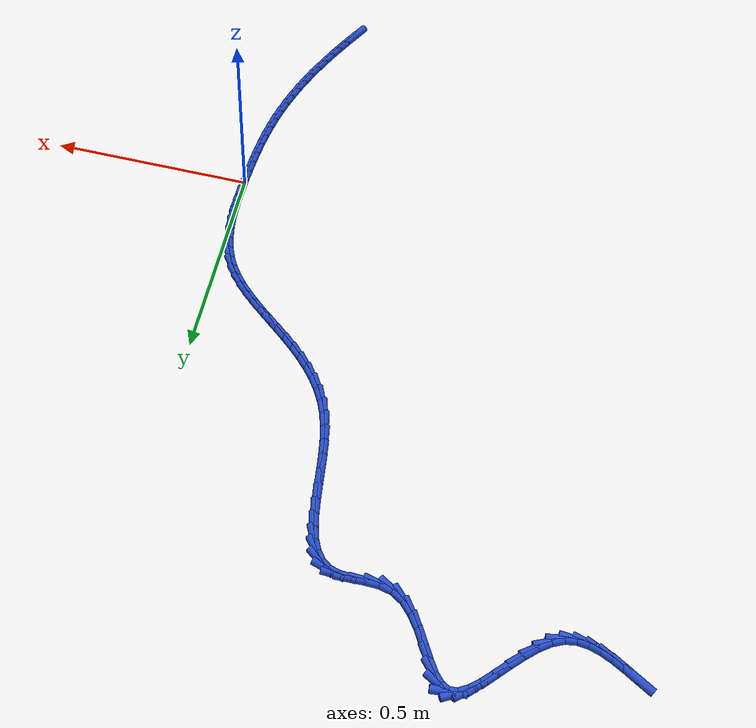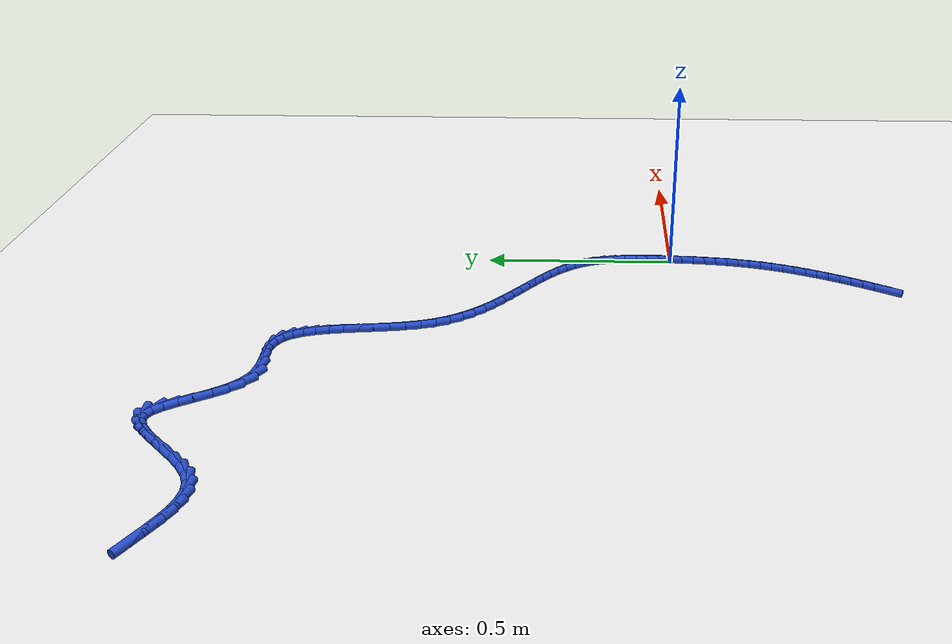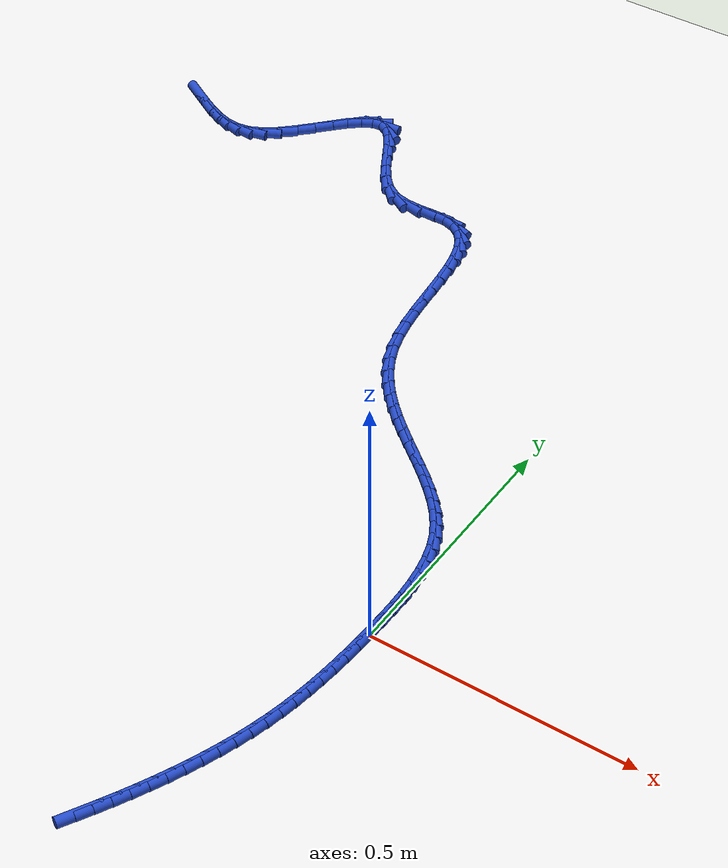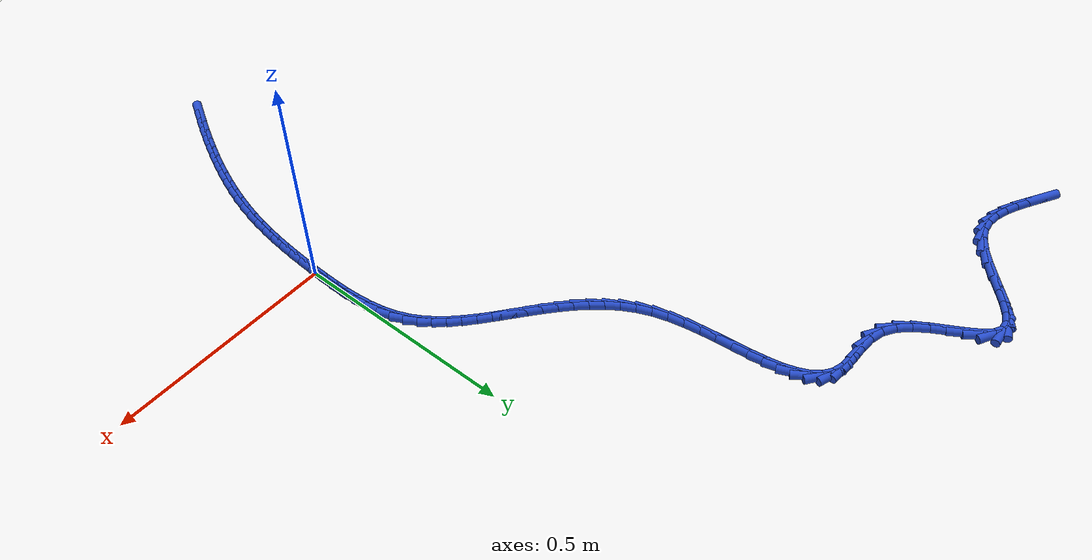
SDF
<sdf version="1.6">
 <world name="default">
  <model name="ground_plane">
   <static>1</static>
   <link name="link">
    <collision name="collision">
     <geometry><plane><normal>0 0 1</normal><size>100 100</size></plane></geometry>
     <surface><friction><ode><mu>100</mu><mu2>50</mu2></ode></friction></surface>
    </collision>
    <visual name="visual">
     <cast_shadows>0</cast_shadows>
     <geometry><plane><normal>0 0 1</normal><size>100 100</size></plane></geometry>
     <material>
      <script><uri>file://media/materials/scripts/gazebo.material</uri><name>Gazebo/WhiteGlow</name></script>
     </material>
    </visual>
   </link>
  </model>
  <model name="line">
   <link name="link_0">
    <pose>1.6263032587282567e-19 -2.7755575615628914e-17 0.01 0 1.57 1.5383353069634973</pose>
    <collision name="collision">
     <geometry><cylinder><radius>0.01</radius><length>0.08</length></cylinder></geometry>
    </collision>
    <visual name="visual">
     <material>
      <script><name>Gazebo/Blue</name><uri>file://media/materials/scripts/gazebo.material</uri></script>
     </material>
     <geometry><cylinder><radius>0.01</radius><length>0.08</length></cylinder></geometry>
    </visual>
   </link>
   <link name="link_1">
    <pose>0.0010352555482330502 0.03188106552595872 0.01 0 1.57 1.560093773469132</pose>
    <collision name="collision">
     <geometry><cylinder><radius>0.01</radius><length>0.08</length></cylinder></geometry>
    </collision>
    <visual name="visual">
     <material>
      <script><name>Gazebo/Blue</name><uri>file://media/materials/scripts/gazebo.material</uri></script>
     </material>
     <geometry><cylinder><radius>0.01</radius><length>0.08</length></cylinder></geometry>
    </visual>
   </link>
   <link name="link_2">
    <pose>0.001378065888462798 0.06391054864702697 0.01 0 1.57 -1.5489534965763683</pose>
    <collision name="collision">
     <geometry><cylinder><radius>0.01</radius><length>0.08</length></cylinder></geometry>
    </collision>
    <visual name="visual">
     <material>
      <script><name>Gazebo/Blue</name><uri>file://media/materials/scripts/gazebo.material</uri></script>
     </material>
     <geometry><cylinder><radius>0.01</radius><length>0.08</length></cylinder></geometry>
    </visual>
   </link>
   <link name="link_3">
    <pose>0.0006816672699082812 0.09578773009873769 0.01 0 1.57 -1.504626500046836</pose>
    <collision name="collision">
     <geometry><cylinder><radius>0.01</radius><length>0.08</length></cylinder></geometry>
    </collision>
    <visual name="visual">
     <material>
      <script><name>Gazebo/Blue</name><uri>file://media/materials/scripts/gazebo.material</uri></script>
     </material>
     <geometry><cylinder><radius>0.01</radius><length>0.08</length></cylinder></geometry>
    </visual>
   </link>
   <link name="link_4">
    <pose>-0.001400704058211463 0.12721189061662377 0.01 0 1.57 -1.4470415365663511</pose>
    <collision name="collision">
     <geometry><cylinder><radius>0.01</radius><length>0.08</length></cylinder></geometry>
    </collision>
    <visual name="visual">
     <material>
      <script><name>Gazebo/Blue</name><uri>file://media/materials/scripts/gazebo.material</uri></script>
     </material>
     <geometry><cylinder><radius>0.01</radius><length>0.08</length></cylinder></geometry>
    </visual>
   </link>
   <link name="link_5">
    <pose>-0.005215811846677402 0.1578823109362181 0.01 0 1.57 -1.3743289784296675</pose>
    <collision name="collision">
     <geometry><cylinder><radius>0.01</radius><length>0.08</length></cylinder></geometry>
    </collision>
    <visual name="visual">
     <material>
      <script><name>Gazebo/Blue</name><uri>file://media/materials/scripts/gazebo.material</uri></script>
     </material>
     <geometry><cylinder><radius>0.01</radius><length>0.08</length></cylinder></geometry>
    </visual>
   </link>
   <link name="link_6">
    <pose>-0.011110419846270496 0.18749827179305362 0.01 0 1.57 -1.2844558011551233</pose>
    <collision name="collision">
     <geometry><cylinder><radius>0.01</radius><length>0.08</length></cylinder></geometry>
    </collision>
    <visual name="visual">
     <material>
      <script><name>Gazebo/Blue</name><uri>file://media/materials/scripts/gazebo.material</uri></script>
     </material>
     <geometry><cylinder><radius>0.01</radius><length>0.08</length></cylinder></geometry>
    </visual>
   </link>
   <link name="link_7">
    <pose>-0.019431291807771717 0.2157590539226632 0.01 0 1.57 -1.175740636228173</pose>
    <collision name="collision">
     <geometry><cylinder><radius>0.01</radius><length>0.08</length></cylinder></geometry>
    </collision>
    <visual name="visual">
     <material>
      <script><name>Gazebo/Blue</name><uri>file://media/materials/scripts/gazebo.material</uri></script>
     </material>
     <geometry><cylinder><radius>0.01</radius><length>0.08</length></cylinder></geometry>
    </visual>
   </link>
   <link name="link_8">
    <pose>-0.030524989544669867 0.24236410001326464 0.01 0 1.57 -1.0553115258710937</pose>
    <collision name="collision">
     <geometry><cylinder><radius>0.01</radius><length>0.08</length></cylinder></geometry>
    </collision>
    <visual name="visual">
     <material>
      <script><name>Gazebo/Blue</name><uri>file://media/materials/scripts/gazebo.material</uri></script>
     </material>
     <geometry><cylinder><radius>0.01</radius><length>0.08</length></cylinder></geometry>
    </visual>
   </link>
   <link name="link_9">
    <pose>-0.044567867071848406 0.2671493585449896 0.01 0 1.57 -0.946920727944196</pose>
    <collision name="collision">
     <geometry><cylinder><radius>0.01</radius><length>0.08</length></cylinder></geometry>
    </collision>
    <visual name="visual">
     <material>
      <script><name>Gazebo/Blue</name><uri>file://media/materials/scripts/gazebo.material</uri></script>
     </material>
     <geometry><cylinder><radius>0.01</radius><length>0.08</length></cylinder></geometry>
    </visual>
   </link>
   <link name="link_10">
    <pose>-0.06125665207494896 0.2903354358834038 0.01 0 1.57 -0.8569819977501223</pose>
    <collision name="collision">
     <geometry><cylinder><radius>0.01</radius><length>0.08</length></cylinder></geometry>
    </collision>
    <visual name="visual">
     <material>
      <script><name>Gazebo/Blue</name><uri>file://media/materials/scripts/gazebo.material</uri></script>
     </material>
     <geometry><cylinder><radius>0.01</radius><length>0.08</length></cylinder></geometry>
    </visual>
   </link>
   <link name="link_11">
    <pose>-0.08020420010105639 0.31221020342415334 0.01 0 1.57 -0.786169993335585</pose>
    <collision name="collision">
     <geometry><cylinder><radius>0.01</radius><length>0.08</length></cylinder></geometry>
    </collision>
    <visual name="visual">
     <material>
      <script><name>Gazebo/Blue</name><uri>file://media/materials/scripts/gazebo.material</uri></script>
     </material>
     <geometry><cylinder><radius>0.01</radius><length>0.08</length></cylinder></geometry>
    </visual>
   </link>
   <link name="link_12">
    <pose>-0.10102336669725559 0.3330615325628844 0.01 0 1.57 -0.7338665187570729</pose>
    <collision name="collision">
     <geometry><cylinder><radius>0.01</radius><length>0.08</length></cylinder></geometry>
    </collision>
    <visual name="visual">
     <material>
      <script><name>Gazebo/Blue</name><uri>file://media/materials/scripts/gazebo.material</uri></script>
     </material>
     <geometry><cylinder><radius>0.01</radius><length>0.08</length></cylinder></geometry>
    </visual>
   </link>
   <link name="link_13">
    <pose>-0.12332700741063148 0.3531772946952434 0.01 0 1.57 -0.6989416583695793</pose>
    <collision name="collision">
     <geometry><cylinder><radius>0.01</radius><length>0.08</length></cylinder></geometry>
    </collision>
    <visual name="visual">
     <material>
      <script><name>Gazebo/Blue</name><uri>file://media/materials/scripts/gazebo.material</uri></script>
     </material>
     <geometry><cylinder><radius>0.01</radius><length>0.08</length></cylinder></geometry>
    </visual>
   </link>
   <link name="link_14">
    <pose>-0.14672797778826902 0.3728453612168767 0.01 0 1.57 -0.6802627960401084</pose>
    <collision name="collision">
     <geometry><cylinder><radius>0.01</radius><length>0.08</length></cylinder></geometry>
    </collision>
    <visual name="visual">
     <material>
      <script><name>Gazebo/Blue</name><uri>file://media/materials/scripts/gazebo.material</uri></script>
     </material>
     <geometry><cylinder><radius>0.01</radius><length>0.08</length></cylinder></geometry>
    </visual>
   </link>
   <link name="link_15">
    <pose>-0.170839133377253 0.3923536035234307 0.01 0 1.57 -0.6769563162297912</pose>
    <collision name="collision">
     <geometry><cylinder><radius>0.01</radius><length>0.08</length></cylinder></geometry>
    </collision>
    <visual name="visual">
     <material>
      <script><name>Gazebo/Blue</name><uri>file://media/materials/scripts/gazebo.material</uri></script>
     </material>
     <geometry><cylinder><radius>0.01</radius><length>0.08</length></cylinder></geometry>
    </visual>
   </link>
   <link name="link_16">
    <pose>-0.19527332972466852 0.41198989301055144 0.01 0 1.57 -0.688501725564443</pose>
    <collision name="collision">
     <geometry><cylinder><radius>0.01</radius><length>0.08</length></cylinder></geometry>
    </collision>
    <visual name="visual">
     <material>
      <script><name>Gazebo/Blue</name><uri>file://media/materials/scripts/gazebo.material</uri></script>
     </material>
     <geometry><cylinder><radius>0.01</radius><length>0.08</length></cylinder></geometry>
    </visual>
   </link>
   <link name="link_17">
    <pose>-0.2196434223776003 0.4320421010738855 0.01 0 1.57 -0.7147190556229543</pose>
    <collision name="collision">
     <geometry><cylinder><radius>0.01</radius><length>0.08</length></cylinder></geometry>
    </collision>
    <visual name="visual">
     <material>
      <script><name>Gazebo/Blue</name><uri>file://media/materials/scripts/gazebo.material</uri></script>
     </material>
     <geometry><cylinder><radius>0.01</radius><length>0.08</length></cylinder></geometry>
    </visual>
   </link>
   <link name="link_18">
    <pose>-0.24356226688313337 0.45279809910907903 0.01 0 1.57 -0.755675742183482</pose>
    <collision name="collision">
     <geometry><cylinder><radius>0.01</radius><length>0.08</length></cylinder></geometry>
    </collision>
    <visual name="visual">
     <material>
      <script><name>Gazebo/Blue</name><uri>file://media/materials/scripts/gazebo.material</uri></script>
     </material>
     <geometry><cylinder><radius>0.01</radius><length>0.08</length></cylinder></geometry>
    </visual>
   </link>
   <link name="link_19">
    <pose>-0.2666427187883525 0.47454575851177827 0.01 0 1.57 -0.811511261096778</pose>
    <collision name="collision">
     <geometry><cylinder><radius>0.01</radius><length>0.08</length></cylinder></geometry>
    </collision>
    <visual name="visual">
     <material>
      <script><name>Gazebo/Blue</name><uri>file://media/materials/scripts/gazebo.material</uri></script>
     </material>
     <geometry><cylinder><radius>0.01</radius><length>0.08</length></cylinder></geometry>
    </visual>
   </link>
   <link name="link_20">
    <pose>-0.28849763364034275 0.49757295067762963 0.01 0 1.57 -0.8821661393426828</pose>
    <collision name="collision">
     <geometry><cylinder><radius>0.01</radius><length>0.08</length></cylinder></geometry>
    </collision>
    <visual name="visual">
     <material>
      <script><name>Gazebo/Blue</name><uri>file://media/materials/scripts/gazebo.material</uri></script>
     </material>
     <geometry><cylinder><radius>0.01</radius><length>0.08</length></cylinder></geometry>
    </visual>
   </link>
   <link name="link_21">
    <pose>-0.3087398669861889 0.5221675470022795 0.01 0 1.57 -0.9670183894623179</pose>
    <collision name="collision">
     <geometry><cylinder><radius>0.01</radius><length>0.08</length></cylinder></geometry>
    </collision>
    <visual name="visual">
     <material>
      <script><name>Gazebo/Blue</name><uri>file://media/materials/scripts/gazebo.material</uri></script>
     </material>
     <geometry><cylinder><radius>0.01</radius><length>0.08</length></cylinder></geometry>
    </visual>
   </link>
   <link name="link_22">
    <pose>-0.32698227437297595 0.5486174188813739 0.01 0 1.57 -1.0644885234339185</pose>
    <collision name="collision">
     <geometry><cylinder><radius>0.01</radius><length>0.08</length></cylinder></geometry>
    </collision>
    <visual name="visual">
     <material>
      <script><name>Gazebo/Blue</name><uri>file://media/materials/scripts/gazebo.material</uri></script>
     </material>
     <geometry><cylinder><radius>0.01</radius><length>0.08</length></cylinder></geometry>
    </visual>
   </link>
   <link name="link_23">
    <pose>-0.3428377113477887 0.5772104377105595 0.01 0 1.57 -1.171765569708447</pose>
    <collision name="collision">
     <geometry><cylinder><radius>0.01</radius><length>0.08</length></cylinder></geometry>
    </collision>
    <visual name="visual">
     <material>
      <script><name>Gazebo/Blue</name><uri>file://media/materials/scripts/gazebo.material</uri></script>
     </material>
     <geometry><cylinder><radius>0.01</radius><length>0.08</length></cylinder></geometry>
    </visual>
   </link>
   <link name="link_24">
    <pose>-0.35591903345771225 0.6082344748854823 0.01 0 1.57 -1.2799683563777309</pose>
    <collision name="collision">
     <geometry><cylinder><radius>0.01</radius><length>0.08</length></cylinder></geometry>
    </collision>
    <visual name="visual">
     <material>
      <script><name>Gazebo/Blue</name><uri>file://media/materials/scripts/gazebo.material</uri></script>
     </material>
     <geometry><cylinder><radius>0.01</radius><length>0.08</length></cylinder></geometry>
    </visual>
   </link>
   <link name="link_25">
    <pose>-0.3659776025540326 0.6418398030833943 0.01 0 1.57 -1.3636214379125997</pose>
    <collision name="collision">
     <geometry><cylinder><radius>0.01</radius><length>0.08</length></cylinder></geometry>
    </collision>
    <visual name="visual">
     <material>
      <script><name>Gazebo/Blue</name><uri>file://media/materials/scripts/gazebo.material</uri></script>
     </material>
     <geometry><cylinder><radius>0.01</radius><length>0.08</length></cylinder></geometry>
    </visual>
   </link>
   <link name="link_26">
    <pose>-0.37346836378134174 0.6774777220358674 0.01 0 1.57 -1.420165587430014</pose>
    <collision name="collision">
     <geometry><cylinder><radius>0.01</radius><length>0.08</length></cylinder></geometry>
    </collision>
    <visual name="visual">
     <material>
      <script><name>Gazebo/Blue</name><uri>file://media/materials/scripts/gazebo.material</uri></script>
     </material>
     <geometry><cylinder><radius>0.01</radius><length>0.08</length></cylinder></geometry>
    </visual>
   </link>
   <link name="link_27">
    <pose>-0.37906912351903477 0.7143781305753185 0.01 0 1.57 -1.453964266465154</pose>
    <collision name="collision">
     <geometry><cylinder><radius>0.01</radius><length>0.08</length></cylinder></geometry>
    </collision>
    <visual name="visual">
     <material>
      <script><name>Gazebo/Blue</name><uri>file://media/materials/scripts/gazebo.material</uri></script>
     </material>
     <geometry><cylinder><radius>0.01</radius><length>0.08</length></cylinder></geometry>
    </visual>
   </link>
   <link name="link_28">
    <pose>-0.38345777690040506 0.7517708393618422 0.01 0 1.57 -1.4673154478947013</pose>
    <collision name="collision">
     <geometry><cylinder><radius>0.01</radius><length>0.08</length></cylinder></geometry>
    </collision>
    <visual name="visual">
     <material>
      <script><name>Gazebo/Blue</name><uri>file://media/materials/scripts/gazebo.material</uri></script>
     </material>
     <geometry><cylinder><radius>0.01</radius><length>0.08</length></cylinder></geometry>
    </visual>
   </link>
   <link name="link_29">
    <pose>-0.3873122190587464 0.7888856590555314 0.01 0 1.57 -1.4603935394240113</pose>
    <collision name="collision">
     <geometry><cylinder><radius>0.01</radius><length>0.08</length></cylinder></geometry>
    </collision>
    <visual name="visual">
     <material>
      <script><name>Gazebo/Blue</name><uri>file://media/materials/scripts/gazebo.material</uri></script>
     </material>
     <geometry><cylinder><radius>0.01</radius><length>0.08</length></cylinder></geometry>
    </visual>
   </link>
   <link name="link_30">
    <pose>-0.39131034512735235 0.8249524003164805 0.01 0 1.57 -1.4309868540042958</pose>
    <collision name="collision">
     <geometry><cylinder><radius>0.01</radius><length>0.08</length></cylinder></geometry>
    </collision>
    <visual name="visual">
     <material>
      <script><name>Gazebo/Blue</name><uri>file://media/materials/scripts/gazebo.material</uri></script>
     </material>
     <geometry><cylinder><radius>0.01</radius><length>0.08</length></cylinder></geometry>
    </visual>
   </link>
   <link name="link_31">
    <pose>-0.3961300502395162 0.8592008738047826 0.01 0 1.57 -1.3737902713503496</pose>
    <collision name="collision">
     <geometry><cylinder><radius>0.01</radius><length>0.08</length></cylinder></geometry>
    </collision>
    <visual name="visual">
     <material>
      <script><name>Gazebo/Blue</name><uri>file://media/materials/scripts/gazebo.material</uri></script>
     </material>
     <geometry><cylinder><radius>0.01</radius><length>0.08</length></cylinder></geometry>
    </visual>
   </link>
   <link name="link_32">
    <pose>-0.4024492295285319 0.8908608901805314 0.01 0 1.57 -1.2791405840011714</pose>
    <collision name="collision">
     <geometry><cylinder><radius>0.01</radius><length>0.08</length></cylinder></geometry>
    </collision>
    <visual name="visual">
     <material>
      <script><name>Gazebo/Blue</name><uri>file://media/materials/scripts/gazebo.material</uri></script>
     </material>
     <geometry><cylinder><radius>0.01</radius><length>0.08</length></cylinder></geometry>
    </visual>
   </link>
   <link name="link_33">
    <pose>-0.41094577812769273 0.9191622601038207 0.01 0 1.57 -1.1317498638830485</pose>
    <collision name="collision">
     <geometry><cylinder><radius>0.01</radius><length>0.08</length></cylinder></geometry>
    </collision>
    <visual name="visual">
     <material>
      <script><name>Gazebo/Blue</name><uri>file://media/materials/scripts/gazebo.material</uri></script>
     </material>
     <geometry><cylinder><radius>0.01</radius><length>0.08</length></cylinder></geometry>
    </visual>
   </link>
   <link name="link_34">
    <pose>-0.42229759117029253 0.9433347942347444 0.01 0 1.57 -0.9131739533886902</pose>
    <collision name="collision">
     <geometry><cylinder><radius>0.01</radius><length>0.08</length></cylinder></geometry>
    </collision>
    <visual name="visual">
     <material>
      <script><name>Gazebo/Blue</name><uri>file://media/materials/scripts/gazebo.material</uri></script>
     </material>
     <geometry><cylinder><radius>0.01</radius><length>0.08</length></cylinder></geometry>
    </visual>
   </link>
   <link name="link_35">
    <pose>-0.4371825637896247 0.9626083032333959 0.01 0 1.57 -0.6190096114699019</pose>
    <collision name="collision">
     <geometry><cylinder><radius>0.01</radius><length>0.08</length></cylinder></geometry>
    </collision>
    <visual name="visual">
     <material>
      <script><name>Gazebo/Blue</name><uri>file://media/materials/scripts/gazebo.material</uri></script>
     </material>
     <geometry><cylinder><radius>0.01</radius><length>0.08</length></cylinder></geometry>
    </visual>
   </link>
   <link name="link_36">
    <pose>-0.45627859111898295 0.9762125977598689 0.01 0 1.57 -0.2904046029503048</pose>
    <collision name="collision">
     <geometry><cylinder><radius>0.01</radius><length>0.08</length></cylinder></geometry>
    </collision>
    <visual name="visual">
     <material>
      <script><name>Gazebo/Blue</name><uri>file://media/materials/scripts/gazebo.material</uri></script>
     </material>
     <geometry><cylinder><radius>0.01</radius><length>0.08</length></cylinder></geometry>
    </visual>
   </link>
   <link name="link_37">
    <pose>-0.4802619861468897 0.983380118651616 0.01 0 1.57 -0.041829468330891004</pose>
    <collision name="collision">
     <geometry><cylinder><radius>0.01</radius><length>0.08</length></cylinder></geometry>
    </collision>
    <visual name="visual">
     <material>
      <script><name>Gazebo/Blue</name><uri>file://media/materials/scripts/gazebo.material</uri></script>
     </material>
     <geometry><cylinder><radius>0.01</radius><length>0.08</length></cylinder></geometry>
    </visual>
   </link>
   <link name="link_38">
    <pose>-0.5090618361465976 0.9845855041699224 0.01 0 1.57 0.03351676105892445</pose>
    <collision name="collision">
     <geometry><cylinder><radius>0.01</radius><length>0.08</length></cylinder></geometry>
    </collision>
    <visual name="visual">
     <material>
      <script><name>Gazebo/Blue</name><uri>file://media/materials/scripts/gazebo.material</uri></script>
     </material>
     <geometry><cylinder><radius>0.01</radius><length>0.08</length></cylinder></geometry>
    </visual>
   </link>
   <link name="link_39">
    <pose>-0.5406688712487268 0.9835257418606829 0.01 0 1.57 -0.027654187509504276</pose>
    <collision name="collision">
     <geometry><cylinder><radius>0.01</radius><length>0.08</length></cylinder></geometry>
    </collision>
    <visual name="visual">
     <material>
      <script><name>Gazebo/Blue</name><uri>file://media/materials/scripts/gazebo.material</uri></script>
     </material>
     <geometry><cylinder><radius>0.01</radius><length>0.08</length></cylinder></geometry>
    </visual>
   </link>
   <link name="link_40">
    <pose>-0.5727636081067112 0.9844135220545379 0.01 0 1.57 -0.22881374933406928</pose>
    <collision name="collision">
     <geometry><cylinder><radius>0.01</radius><length>0.08</length></cylinder></geometry>
    </collision>
    <visual name="visual">
     <material>
      <script><name>Gazebo/Blue</name><uri>file://media/materials/scripts/gazebo.material</uri></script>
     </material>
     <geometry><cylinder><radius>0.01</radius><length>0.08</length></cylinder></geometry>
    </visual>
   </link>
   <link name="link_41">
    <pose>-0.6030265633739852 0.9914615350821276 0.01 0 1.57 -0.5541904445779866</pose>
    <collision name="collision">
     <geometry><cylinder><radius>0.01</radius><length>0.08</length></cylinder></geometry>
    </collision>
    <visual name="visual">
     <material>
      <script><name>Gazebo/Blue</name><uri>file://media/materials/scripts/gazebo.material</uri></script>
     </material>
     <geometry><cylinder><radius>0.01</radius><length>0.08</length></cylinder></geometry>
    </visual>
   </link>
   <link name="link_42">
    <pose>-0.6295690195899953 1.0078882822779218 0.01 0 1.57 -0.8125869228990091</pose>
    <collision name="collision">
     <geometry><cylinder><radius>0.01</radius><length>0.08</length></cylinder></geometry>
    </collision>
    <visual name="visual">
     <material>
      <script><name>Gazebo/Blue</name><uri>file://media/materials/scripts/gazebo.material</uri></script>
     </material>
     <geometry><cylinder><radius>0.01</radius><length>0.08</length></cylinder></geometry>
    </visual>
   </link>
   <link name="link_43">
    <pose>-0.652559514438857 1.0321642092608283 0.01 0 1.57 -0.9648073413728792</pose>
    <collision name="collision">
     <geometry><cylinder><radius>0.01</radius><length>0.08</length></cylinder></geometry>
    </collision>
    <visual name="visual">
     <material>
      <script><name>Gazebo/Blue</name><uri>file://media/materials/scripts/gazebo.material</uri></script>
     </material>
     <geometry><cylinder><radius>0.01</radius><length>0.08</length></cylinder></geometry>
    </visual>
   </link>
   <link name="link_44">
    <pose>-0.6727800432870837 1.061343927905111 0.01 0 1.57 -1.0410724566464922</pose>
    <collision name="collision">
     <geometry><cylinder><radius>0.01</radius><length>0.08</length></cylinder></geometry>
    </collision>
    <visual name="visual">
     <material>
      <script><name>Gazebo/Blue</name><uri>file://media/materials/scripts/gazebo.material</uri></script>
     </material>
     <geometry><cylinder><radius>0.01</radius><length>0.08</length></cylinder></geometry>
    </visual>
   </link>
   <link name="link_45">
    <pose>-0.691012707511905 1.092481805416899 0.01 0 1.57 -1.056712876413495</pose>
    <collision name="collision">
     <geometry><cylinder><radius>0.01</radius><length>0.08</length></cylinder></geometry>
    </collision>
    <visual name="visual">
     <material>
      <script><name>Gazebo/Blue</name><uri>file://media/materials/scripts/gazebo.material</uri></script>
     </material>
     <geometry><cylinder><radius>0.01</radius><length>0.08</length></cylinder></geometry>
    </visual>
   </link>
   <link name="link_46">
    <pose>-0.7080396084905498 1.1226322090023217 0.01 0 1.57 -1.0062554882138028</pose>
    <collision name="collision">
     <geometry><cylinder><radius>0.01</radius><length>0.08</length></cylinder></geometry>
    </collision>
    <visual name="visual">
     <material>
      <script><name>Gazebo/Blue</name><uri>file://media/materials/scripts/gazebo.material</uri></script>
     </material>
     <geometry><cylinder><radius>0.01</radius><length>0.08</length></cylinder></geometry>
    </visual>
   </link>
   <link name="link_47">
    <pose>-0.7246428476002467 1.1488495058675068 0.01 0 1.57 -0.8507831532123473</pose>
    <collision name="collision">
     <geometry><cylinder><radius>0.01</radius><length>0.08</length></cylinder></geometry>
    </collision>
    <visual name="visual">
     <material>
      <script><name>Gazebo/Blue</name><uri>file://media/materials/scripts/gazebo.material</uri></script>
     </material>
     <geometry><cylinder><radius>0.01</radius><length>0.08</length></cylinder></geometry>
    </visual>
   </link>
   <link name="link_48">
    <pose>-0.7416045262182246 1.1681880632185835 0.01 0 1.57 -0.4839188857858722</pose>
    <collision name="collision">
     <geometry><cylinder><radius>0.01</radius><length>0.08</length></cylinder></geometry>
    </collision>
    <visual name="visual">
     <material>
      <script><name>Gazebo/Blue</name><uri>file://media/materials/scripts/gazebo.material</uri></script>
     </material>
     <geometry><cylinder><radius>0.01</radius><length>0.08</length></cylinder></geometry>
    </visual>
   </link>
   <link name="link_49">
    <pose>-0.7597066811475539 1.1777025938008612 0.01 0 1.57 0.10765609307942972</pose>
    <collision name="collision">
     <geometry><cylinder><radius>0.01</radius><length>0.08</length></cylinder></geometry>
    </collision>
    <visual name="visual">
     <material>
      <script><name>Gazebo/Blue</name><uri>file://media/materials/scripts/gazebo.material</uri></script>
     </material>
     <geometry><cylinder><radius>0.01</radius><length>0.08</length></cylinder></geometry>
    </visual>
   </link>
   <link name="link_50">
    <pose>-0.7795233299417831 1.175560930573153 0.01 0 1.57 0.5119483099922227</pose>
    <collision name="collision">
     <geometry><cylinder><radius>0.01</radius><length>0.08</length></cylinder></geometry>
    </collision>
    <visual name="visual">
     <material>
      <script><name>Gazebo/Blue</name><uri>file://media/materials/scripts/gazebo.material</uri></script>
     </material>
     <geometry><cylinder><radius>0.01</radius><length>0.08</length></cylinder></geometry>
    </visual>
   </link>
   <link name="link_51">
    <pose>-0.8009584918633995 1.1635160970115264 0.01 0 1.57 0.7063978190612228</pose>
    <collision name="collision">
     <geometry><cylinder><radius>0.01</radius><length>0.08</length></cylinder></geometry>
    </collision>
    <visual name="visual">
     <material>
      <script><name>Gazebo/Blue</name><uri>file://media/materials/scripts/gazebo.material</uri></script>
     </material>
     <geometry><cylinder><radius>0.01</radius><length>0.08</length></cylinder></geometry>
    </visual>
   </link>
   <link name="link_52">
    <pose>-0.8237815558473549 1.1440415294349666 0.01 0 1.57 0.7947038013231421</pose>
    <collision name="collision">
     <geometry><cylinder><radius>0.01</radius><length>0.08</length></cylinder></geometry>
    </collision>
    <visual name="visual">
     <material>
      <script><name>Gazebo/Blue</name><uri>file://media/materials/scripts/gazebo.material</uri></script>
     </material>
     <geometry><cylinder><radius>0.01</radius><length>0.08</length></cylinder></geometry>
    </visual>
   </link>
   <link name="link_53">
    <pose>-0.8477619108286011 1.1196106641624588 0.01 0 1.57 0.8241025272228049</pose>
    <collision name="collision">
     <geometry><cylinder><radius>0.01</radius><length>0.08</length></cylinder></geometry>
    </collision>
    <visual name="visual">
     <material>
      <script><name>Gazebo/Blue</name><uri>file://media/materials/scripts/gazebo.material</uri></script>
     </material>
     <geometry><cylinder><radius>0.01</radius><length>0.08</length></cylinder></geometry>
    </visual>
   </link>
   <link name="link_54">
    <pose>-0.8726689457420906 1.0926969375129894 0.01 0 1.57 0.8105240764414253</pose>
    <collision name="collision">
     <geometry><cylinder><radius>0.01</radius><length>0.08</length></cylinder></geometry>
    </collision>
    <visual name="visual">
     <material>
      <script><name>Gazebo/Blue</name><uri>file://media/materials/scripts/gazebo.material</uri></script>
     </material>
     <geometry><cylinder><radius>0.01</radius><length>0.08</length></cylinder></geometry>
    </visual>
   </link>
   <link name="link_55">
    <pose>-0.8982720495227755 1.0657737858055436 0.01 0 1.57 0.7535566761562176</pose>
    <collision name="collision">
     <geometry><cylinder><radius>0.01</radius><length>0.08</length></cylinder></geometry>
    </collision>
    <visual name="visual">
     <material>
      <script><name>Gazebo/Blue</name><uri>file://media/materials/scripts/gazebo.material</uri></script>
     </material>
     <geometry><cylinder><radius>0.01</radius><length>0.08</length></cylinder></geometry>
    </visual>
   </link>
   <link name="link_56">
    <pose>-0.9243406111056073 1.0413146453591071 0.01 0 1.57 0.6384733091120199</pose>
    <collision name="collision">
     <geometry><cylinder><radius>0.01</radius><length>0.08</length></cylinder></geometry>
    </collision>
    <visual name="visual">
     <material>
      <script><name>Gazebo/Blue</name><uri>file://media/materials/scripts/gazebo.material</uri></script>
     </material>
     <geometry><cylinder><radius>0.01</radius><length>0.08</length></cylinder></geometry>
    </visual>
   </link>
   <link name="link_57">
    <pose>-0.950644019425538 1.0217929524926654 0.01 0 1.57 0.4342787155163912</pose>
    <collision name="collision">
     <geometry><cylinder><radius>0.01</radius><length>0.08</length></cylinder></geometry>
    </collision>
    <visual name="visual">
     <material>
      <script><name>Gazebo/Blue</name><uri>file://media/materials/scripts/gazebo.material</uri></script>
     </material>
     <geometry><cylinder><radius>0.01</radius><length>0.08</length></cylinder></geometry>
    </visual>
   </link>
   <link name="link_58">
    <pose>-0.9769611053597728 1.0095868272610382 0.01 0 1.57 0.16494484447527724</pose>
    <collision name="collision">
     <geometry><cylinder><radius>0.01</radius><length>0.08</length></cylinder></geometry>
    </collision>
    <visual name="visual">
     <material>
      <script><name>Gazebo/Blue</name><uri>file://media/materials/scripts/gazebo.material</uri></script>
     </material>
     <geometry><cylinder><radius>0.01</radius><length>0.08</length></cylinder></geometry>
    </visual>
   </link>
   <link name="link_59">
    <pose>-1.0032553889905436 1.0052099549888966 0.01 0 1.57 -0.08566554288172233</pose>
    <collision name="collision">
     <geometry><cylinder><radius>0.01</radius><length>0.08</length></cylinder></geometry>
    </collision>
    <visual name="visual">
     <material>
      <script><name>Gazebo/Blue</name><uri>file://media/materials/scripts/gazebo.material</uri></script>
     </material>
     <geometry><cylinder><radius>0.01</radius><length>0.08</length></cylinder></geometry>
    </visual>
   </link>
   <link name="link_60">
    <pose>-1.0296586587412213 1.007477354643281 0.01 0 1.57 -0.2800429669759666</pose>
    <collision name="collision">
     <geometry><cylinder><radius>0.01</radius><length>0.08</length></cylinder></geometry>
    </collision>
    <visual name="visual">
     <material>
      <script><name>Gazebo/Blue</name><uri>file://media/materials/scripts/gazebo.material</uri></script>
     </material>
     <geometry><cylinder><radius>0.01</radius><length>0.08</length></cylinder></geometry>
    </visual>
   </link>
   <link name="link_61">
    <pose>-1.0563088518758008 1.015141972738158 0.01 0 1.57 -0.41200512017393365</pose>
    <collision name="collision">
     <geometry><cylinder><radius>0.01</radius><length>0.08</length></cylinder></geometry>
    </collision>
    <visual name="visual">
     <material>
      <script><name>Gazebo/Blue</name><uri>file://media/materials/scripts/gazebo.material</uri></script>
     </material>
     <geometry><cylinder><radius>0.01</radius><length>0.08</length></cylinder></geometry>
    </visual>
   </link>
   <link name="link_62">
    <pose>-1.0833439056582777 1.0269567557874957 0.01 0 1.57 -0.4905327318039381</pose>
    <collision name="collision">
     <geometry><cylinder><radius>0.01</radius><length>0.08</length></cylinder></geometry>
    </collision>
    <visual name="visual">
     <material>
      <script><name>Gazebo/Blue</name><uri>file://media/materials/scripts/gazebo.material</uri></script>
     </material>
     <geometry><cylinder><radius>0.01</radius><length>0.08</length></cylinder></geometry>
    </visual>
   </link>
   <link name="link_63">
    <pose>-1.1109017573526472 1.041674650305261 0.01 0 1.57 -0.5257739572577095</pose>
    <collision name="collision">
     <geometry><cylinder><radius>0.01</radius><length>0.08</length></cylinder></geometry>
    </collision>
    <visual name="visual">
     <material>
      <script><name>Gazebo/Blue</name><uri>file://media/materials/scripts/gazebo.material</uri></script>
     </material>
     <geometry><cylinder><radius>0.01</radius><length>0.08</length></cylinder></geometry>
    </visual>
   </link>
   <link name="link_64">
    <pose>-1.1391203442229048 1.0580486028054217 0.01 0 1.57 -0.5243695558374367</pose>
    <collision name="collision">
     <geometry><cylinder><radius>0.01</radius><length>0.08</length></cylinder></geometry>
    </collision>
    <visual name="visual">
     <material>
      <script><name>Gazebo/Blue</name><uri>file://media/materials/scripts/gazebo.material</uri></script>
     </material>
     <geometry><cylinder><radius>0.01</radius><length>0.08</length></cylinder></geometry>
    </visual>
   </link>
   <link name="link_241">
    <pose>-0.16120354918488142 -0.5515253583471565 0.01 0 1.57 1.0576519265628626</pose>
    <collision name="collision">
     <geometry><cylinder><radius>0.01</radius><length>0.08</length></cylinder></geometry>
    </collision>
    <visual name="visual">
     <material>
      <script><name>Gazebo/Blue</name><uri>file://media/materials/scripts/gazebo.material</uri></script>
     </material>
     <geometry><cylinder><radius>0.01</radius><length>0.08</length></cylinder></geometry>
    </visual>
   </link>
   <link name="link_242">
    <pose>-0.1462954205508334 -0.525068781083825 0.01 0 1.57 1.0748351992476393</pose>
    <collision name="collision">
     <geometry><cylinder><radius>0.01</radius><length>0.08</length></cylinder></geometry>
    </collision>
    <visual name="visual">
     <material>
      <script><name>Gazebo/Blue</name><uri>file://media/materials/scripts/gazebo.material</uri></script>
     </material>
     <geometry><cylinder><radius>0.01</radius><length>0.08</length></cylinder></geometry>
    </visual>
   </link>
   <link name="link_243">
    <pose>-0.13181292774480022 -0.4983023745952434 0.01 0 1.57 1.0934655069821055</pose>
    <collision name="collision">
     <geometry><cylinder><radius>0.01</radius><length>0.08</length></cylinder></geometry>
    </collision>
    <visual name="visual">
     <material>
      <script><name>Gazebo/Blue</name><uri>file://media/materials/scripts/gazebo.material</uri></script>
     </material>
     <geometry><cylinder><radius>0.01</radius><length>0.08</length></cylinder></geometry>
    </visual>
   </link>
   <link name="link_244">
    <pose>-0.1177885401557168 -0.47118759096135493 0.01 0 1.57 1.1135136493272648</pose>
    <collision name="collision">
     <geometry><cylinder><radius>0.01</radius><length>0.08</length></cylinder></geometry>
    </collision>
    <visual name="visual">
     <material>
      <script><name>Gazebo/Blue</name><uri>file://media/materials/scripts/gazebo.material</uri></script>
     </material>
     <geometry><cylinder><radius>0.01</radius><length>0.08</length></cylinder></geometry>
    </visual>
   </link>
   <link name="link_245">
    <pose>-0.10425846839309626 -0.4436912995412875 0.01 0 1.57 1.1352201692109185</pose>
    <collision name="collision">
     <geometry><cylinder><radius>0.01</radius><length>0.08</length></cylinder></geometry>
    </collision>
    <visual name="visual">
     <material>
      <script><name>Gazebo/Blue</name><uri>file://media/materials/scripts/gazebo.material</uri></script>
     </material>
     <geometry><cylinder><radius>0.01</radius><length>0.08</length></cylinder></geometry>
    </visual>
   </link>
   <link name="link_246">
    <pose>-0.0912900467972939 -0.4158254367881117 0.01 0 1.57 1.1588026458499683</pose>
    <collision name="collision">
     <geometry><cylinder><radius>0.01</radius><length>0.08</length></cylinder></geometry>
    </collision>
    <visual name="visual">
     <material>
      <script><name>Gazebo/Blue</name><uri>file://media/materials/scripts/gazebo.material</uri></script>
     </material>
     <geometry><cylinder><radius>0.01</radius><length>0.08</length></cylinder></geometry>
    </visual>
   </link>
   <link name="link_247">
    <pose>-0.07896604506524113 -0.3876242895173375 0.01 0 1.57 1.1843786257312923</pose>
    <collision name="collision">
     <geometry><cylinder><radius>0.01</radius><length>0.08</length></cylinder></geometry>
    </collision>
    <visual name="visual">
     <material>
      <script><name>Gazebo/Blue</name><uri>file://media/materials/scripts/gazebo.material</uri></script>
     </material>
     <geometry><cylinder><radius>0.01</radius><length>0.08</length></cylinder></geometry>
    </visual>
   </link>
   <link name="link_248">
    <pose>-0.06736934386051369 -0.35912230522393307 0.01 0 1.57 1.2120750318734292</pose>
    <collision name="collision">
     <geometry><cylinder><radius>0.01</radius><length>0.08</length></cylinder></geometry>
    </collision>
    <visual name="visual">
     <material>
      <script><name>Gazebo/Blue</name><uri>file://media/materials/scripts/gazebo.material</uri></script>
     </material>
     <geometry><cylinder><radius>0.01</radius><length>0.08</length></cylinder></geometry>
    </visual>
   </link>
   <link name="link_249">
    <pose>-0.05658282384668744 -0.3303539314028667 0.01 0 1.57 1.2420273335836065</pose>
    <collision name="collision">
     <geometry><cylinder><radius>0.01</radius><length>0.08</length></cylinder></geometry>
    </collision>
    <visual name="visual">
     <material>
      <script><name>Gazebo/Blue</name><uri>file://media/materials/scripts/gazebo.material</uri></script>
     </material>
     <geometry><cylinder><radius>0.01</radius><length>0.08</length></cylinder></geometry>
    </visual>
   </link>
   <link name="link_250">
    <pose>-0.0466893656873381 -0.30135361554910606 0.01 0 1.57 1.2743769965519067</pose>
    <collision name="collision">
     <geometry><cylinder><radius>0.01</radius><length>0.08</length></cylinder></geometry>
    </collision>
    <visual name="visual">
     <material>
      <script><name>Gazebo/Blue</name><uri>file://media/materials/scripts/gazebo.material</uri></script>
     </material>
     <geometry><cylinder><radius>0.01</radius><length>0.08</length></cylinder></geometry>
    </visual>
   </link>
   <link name="link_251">
    <pose>-0.03777185004604147 -0.27215580515761933 0.01 0 1.57 1.3092678796769217</pose>
    <collision name="collision">
     <geometry><cylinder><radius>0.01</radius><length>0.08</length></cylinder></geometry>
    </collision>
    <visual name="visual">
     <material>
      <script><name>Gazebo/Blue</name><uri>file://media/materials/scripts/gazebo.material</uri></script>
     </material>
     <geometry><cylinder><radius>0.01</radius><length>0.08</length></cylinder></geometry>
    </visual>
   </link>
   <link name="link_252">
    <pose>-0.029913157586373116 -0.2427949477233738 0.01 0 1.57 1.346223011366031</pose>
    <collision name="collision">
     <geometry><cylinder><radius>0.01</radius><length>0.08</length></cylinder></geometry>
    </collision>
    <visual name="visual">
     <material>
      <script><name>Gazebo/Blue</name><uri>file://media/materials/scripts/gazebo.material</uri></script>
     </material>
     <geometry><cylinder><radius>0.01</radius><length>0.08</length></cylinder></geometry>
    </visual>
   </link>
   <link name="link_253">
    <pose>-0.023175013370568164 -0.2132968474005412 0.01 0 1.57 1.381679475892478</pose>
    <collision name="collision">
     <geometry><cylinder><radius>0.01</radius><length>0.08</length></cylinder></geometry>
    </collision>
    <visual name="visual">
     <material>
      <script><name>Gazebo/Blue</name><uri>file://media/materials/scripts/gazebo.material</uri></script>
     </material>
     <geometry><cylinder><radius>0.01</radius><length>0.08</length></cylinder></geometry>
    </visual>
   </link>
   <link name="link_254">
    <pose>-0.017498163270527202 -0.18363788103774287 0.01 0 1.57 1.4141013768546526</pose>
    <collision name="collision">
     <geometry><cylinder><radius>0.01</radius><length>0.08</length></cylinder></geometry>
    </collision>
    <visual name="visual">
     <material>
      <script><name>Gazebo/Blue</name><uri>file://media/materials/scripts/gazebo.material</uri></script>
     </material>
     <geometry><cylinder><radius>0.01</radius><length>0.08</length></cylinder></geometry>
    </visual>
   </link>
   <link name="link_255">
    <pose>-0.012780420565821736 -0.15377688492680677 0.01 0 1.57 1.4432423616996324</pose>
    <collision name="collision">
     <geometry><cylinder><radius>0.01</radius><length>0.08</length></cylinder></geometry>
    </collision>
    <visual name="visual">
     <material>
      <script><name>Gazebo/Blue</name><uri>file://media/materials/scripts/gazebo.material</uri></script>
     </material>
     <geometry><cylinder><radius>0.01</radius><length>0.08</length></cylinder></geometry>
    </visual>
   </link>
   <link name="link_256">
    <pose>-0.008919547600099565 -0.12367267454915985 0.01 0 1.57 1.468932835818694</pose>
    <collision name="collision">
     <geometry><cylinder><radius>0.01</radius><length>0.08</length></cylinder></geometry>
    </collision>
    <visual name="visual">
     <material>
      <script><name>Gazebo/Blue</name><uri>file://media/materials/scripts/gazebo.material</uri></script>
     </material>
     <geometry><cylinder><radius>0.01</radius><length>0.08</length></cylinder></geometry>
    </visual>
   </link>
   <link name="link_257">
    <pose>-0.005813306717008502 -0.09328406538622884 0.01 0 1.57 1.4910727431304742</pose>
    <collision name="collision">
     <geometry><cylinder><radius>0.01</radius><length>0.08</length></cylinder></geometry>
    </collision>
    <visual name="visual">
     <material>
      <script><name>Gazebo/Blue</name><uri>file://media/materials/scripts/gazebo.material</uri></script>
     </material>
     <geometry><cylinder><radius>0.01</radius><length>0.08</length></cylinder></geometry>
    </visual>
   </link>
   <link name="link_258">
    <pose>-0.0033594602601963452 -0.06256987291944063 0.01 0 1.57 1.5096233624629216</pose>
    <collision name="collision">
     <geometry><cylinder><radius>0.01</radius><length>0.08</length></cylinder></geometry>
    </collision>
    <visual name="visual">
     <material>
      <script><name>Gazebo/Blue</name><uri>file://media/materials/scripts/gazebo.material</uri></script>
     </material>
     <geometry><cylinder><radius>0.01</radius><length>0.08</length></cylinder></geometry>
    </visual>
   </link>
   <link name="link_259">
    <pose>-0.0014557705733109125 -0.03148891263022212 0.01 0 1.57 1.5245980103639427</pose>
    <collision name="collision">
     <geometry><cylinder><radius>0.01</radius><length>0.08</length></cylinder></geometry>
    </collision>
    <visual name="visual">
     <material>
      <script><name>Gazebo/Blue</name><uri>file://media/materials/scripts/gazebo.material</uri></script>
     </material>
     <geometry><cylinder><radius>0.01</radius><length>0.08</length></cylinder></geometry>
    </visual>
   </link>
   <link name="link_260">
    <pose>-4.607859233063394e-18 -6.938893903907228e-17 0.01 0 1.57 1.5360527394822896</pose>
    <collision name="collision">
     <geometry><cylinder><radius>0.01</radius><length>0.08</length></cylinder></geometry>
    </collision>
    <visual name="visual">
     <material>
      <script><name>Gazebo/Blue</name><uri>file://media/materials/scripts/gazebo.material</uri></script>
     </material>
     <geometry><cylinder><radius>0.01</radius><length>0.08</length></cylinder></geometry>
    </visual>
   </link>
   <link name="link_261">
    <pose>0.0011100891160885677 0.03193804948979858 0.01 0 1.57 1.5440777758774369</pose>
    <collision name="collision">
     <geometry><cylinder><radius>0.01</radius><length>0.08</length></cylinder></geometry>
    </collision>
    <visual name="visual">
     <material>
      <script><name>Gazebo/Blue</name><uri>file://media/materials/scripts/gazebo.material</uri></script>
     </material>
     <geometry><cylinder><radius>0.01</radius><length>0.08</length></cylinder></geometry>
    </visual>
   </link>
   <link name="link_262">
    <pose>0.001976734431306999 0.06436642035774703 0.01 0 1.57 1.540095328922943</pose>
    <collision name="collision">
     <geometry><cylinder><radius>0.01</radius><length>0.08</length></cylinder></geometry>
    </collision>
    <visual name="visual">
     <material>
      <script><name>Gazebo/Blue</name><uri>file://media/materials/scripts/gazebo.material</uri></script>
     </material>
     <geometry><cylinder><radius>0.01</radius><length>0.08</length></cylinder></geometry>
    </visual>
   </link>
  </model>
 </world>
</sdf>
